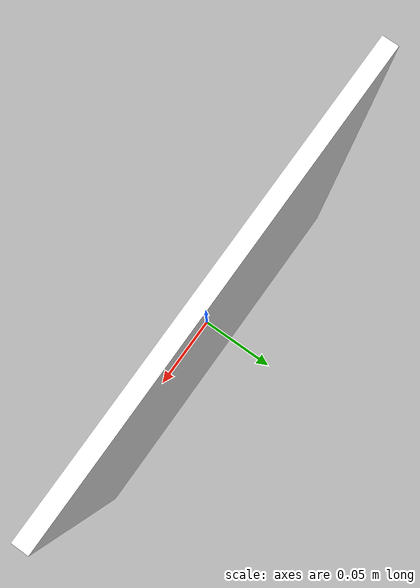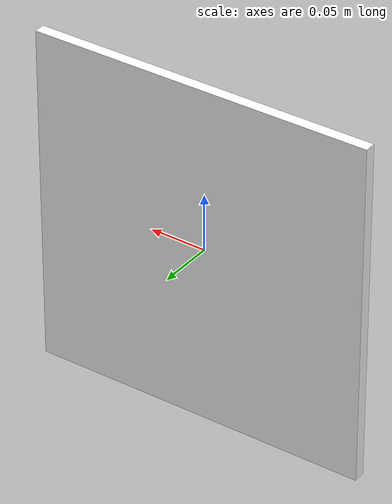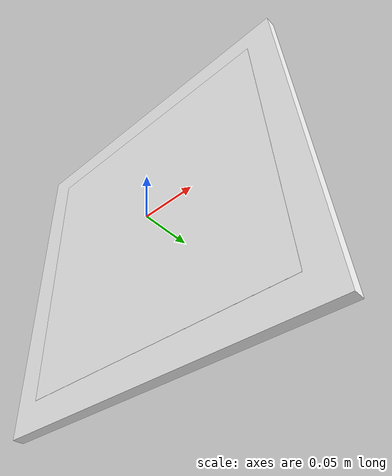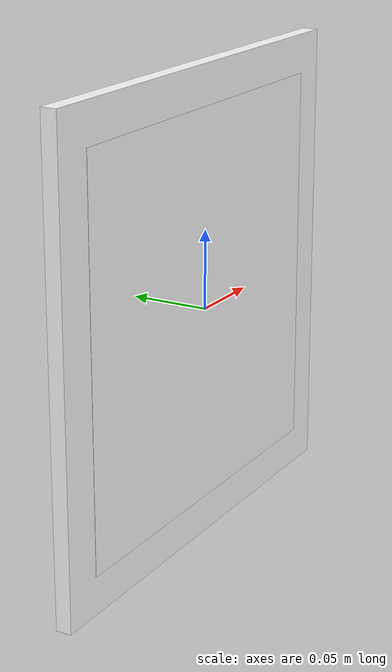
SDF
<?xml version="1.0"?>
<sdf version="1.9">
  <model name="apriltag_beacon">
    <static>true</static>
    <link name="link">
      <visual name="backing">
        <pose>0 0.006 0 0 0 0</pose>
        <geometry>
          <box>
            <size>0.30 0.01 0.30</size>
          </box>
        </geometry>
        <material>
          <ambient>1 1 1 1</ambient>
          <diffuse>1 1 1 1</diffuse>
          <specular>0 0 0 1</specular>
        </material>
      </visual>
      <visual name="tag">
        <pose>0 0 0 1.5707963 0 0</pose>
        <geometry>
          <plane>
            <normal>0 0 1</normal>
            <size>0.25 0.25</size>
          </plane>
        </geometry>
        <material>
          <ambient>1 1 1 1</ambient>
          <diffuse>1 1 1 1</diffuse>
          <specular>0 0 0 1</specular>
          <pbr>
            <metal>
              <albedo_map>model://apriltag_beacon/materials/textures/tag36_11_00000.png</albedo_map>
            </metal>
          </pbr>
        </material>
      </visual>
    </link>
  </model>
</sdf>
